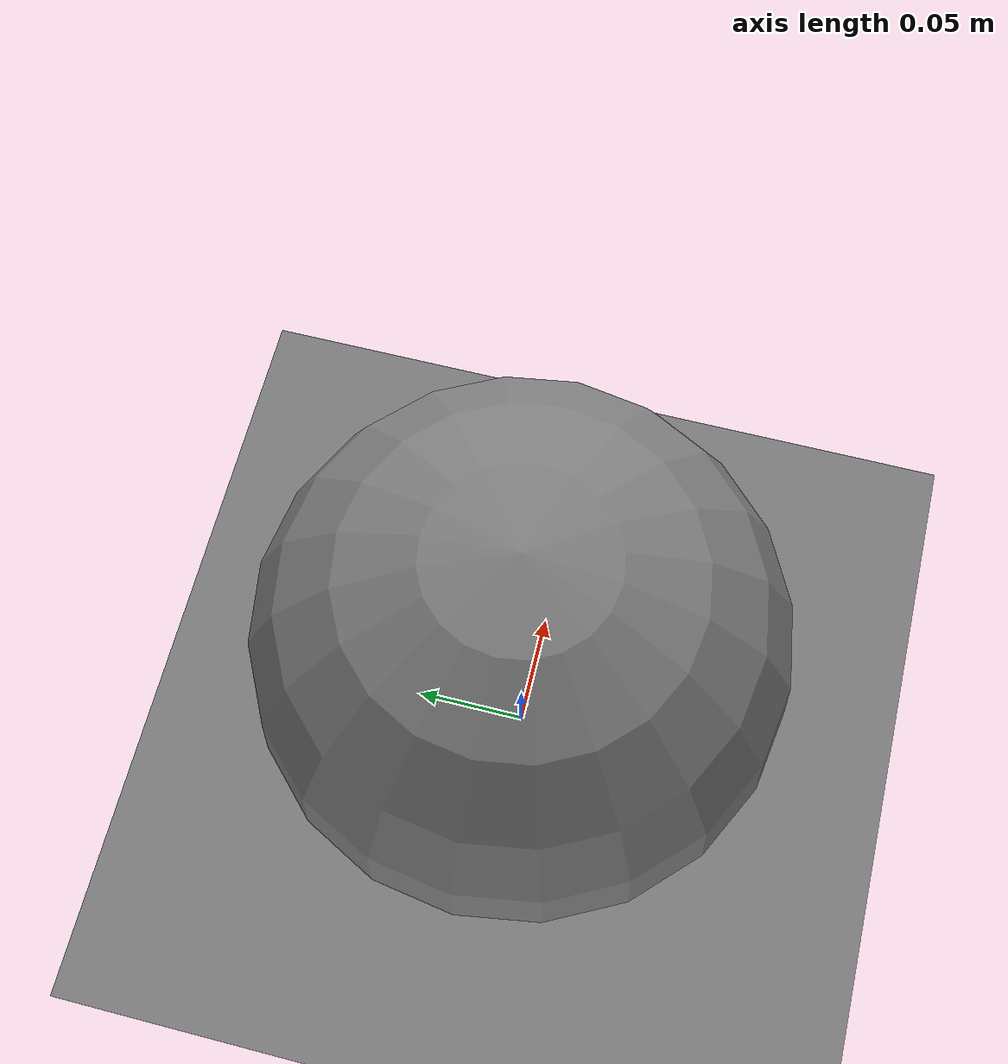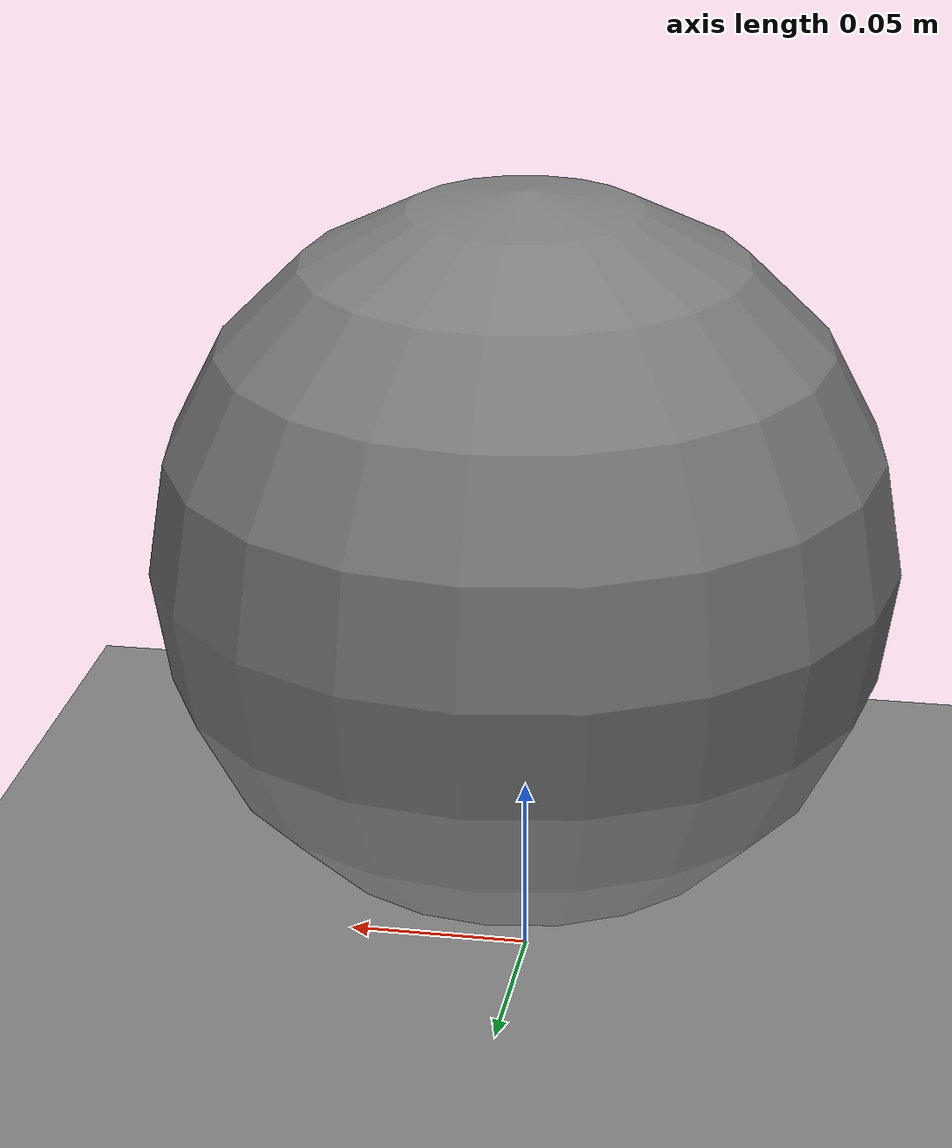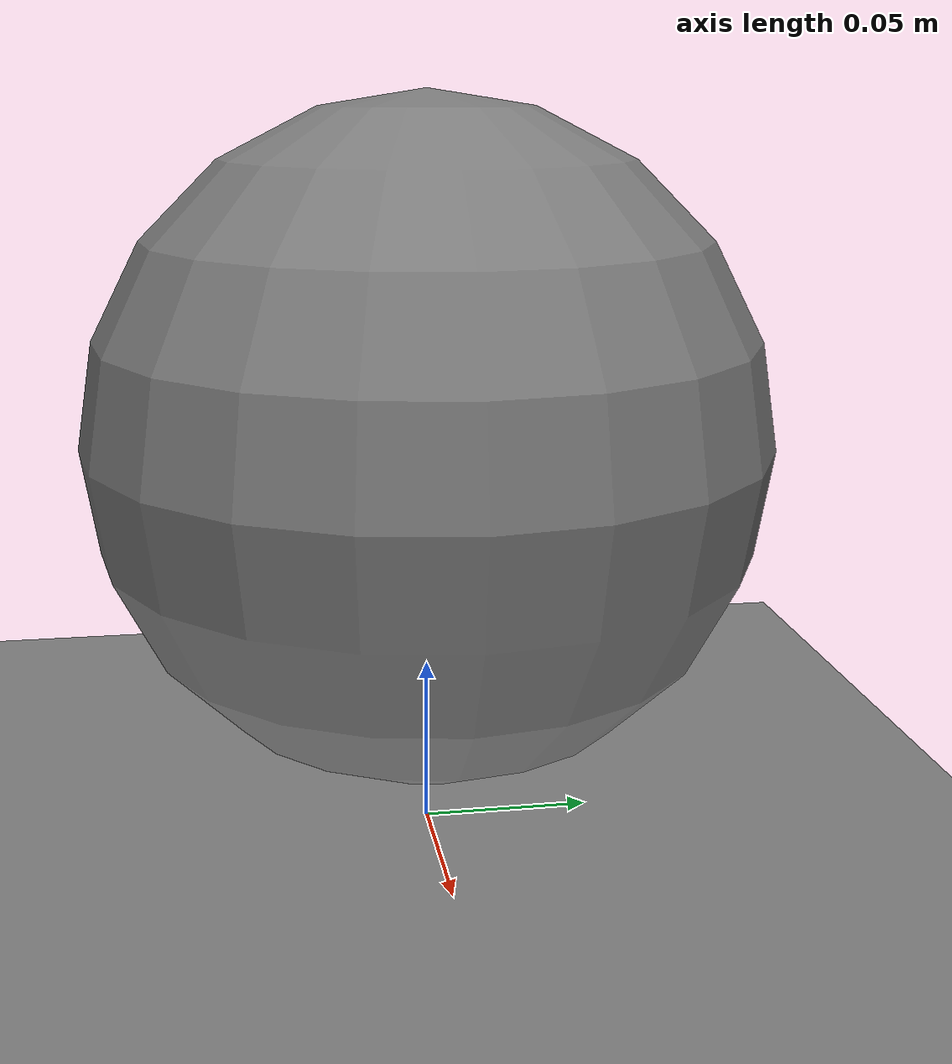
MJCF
<mujoco model="bench_newton">
            <option gravity="0 0 -9.81" timestep="0.001"
                    solver="Newton" cone="elliptic" iterations="100"/>
            <worldbody>
                <body pos="0 0 0.12">
                    <joint type="free"/>
                    <geom type="sphere" size="0.1" mass="1.0"/>
                </body>
                <geom type="plane" size="5 5 0.1"/>
            </worldbody>
        </mujoco>
